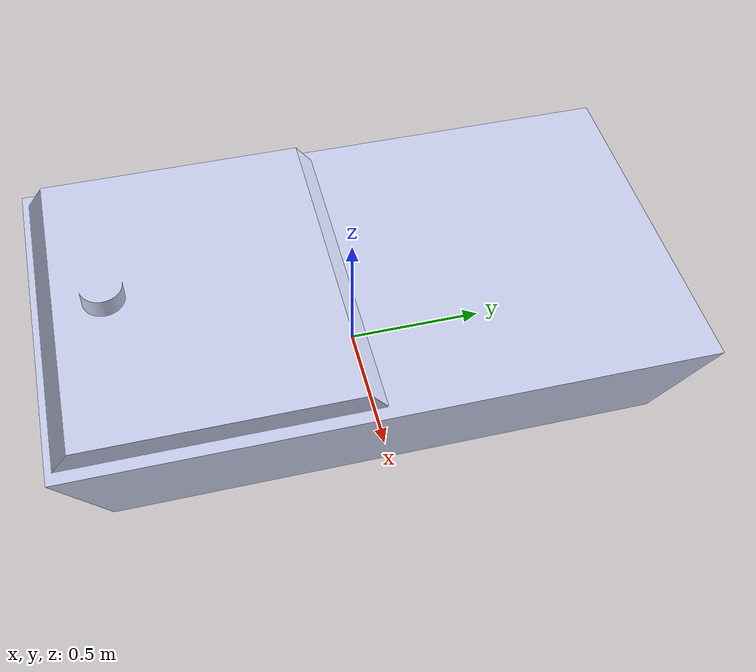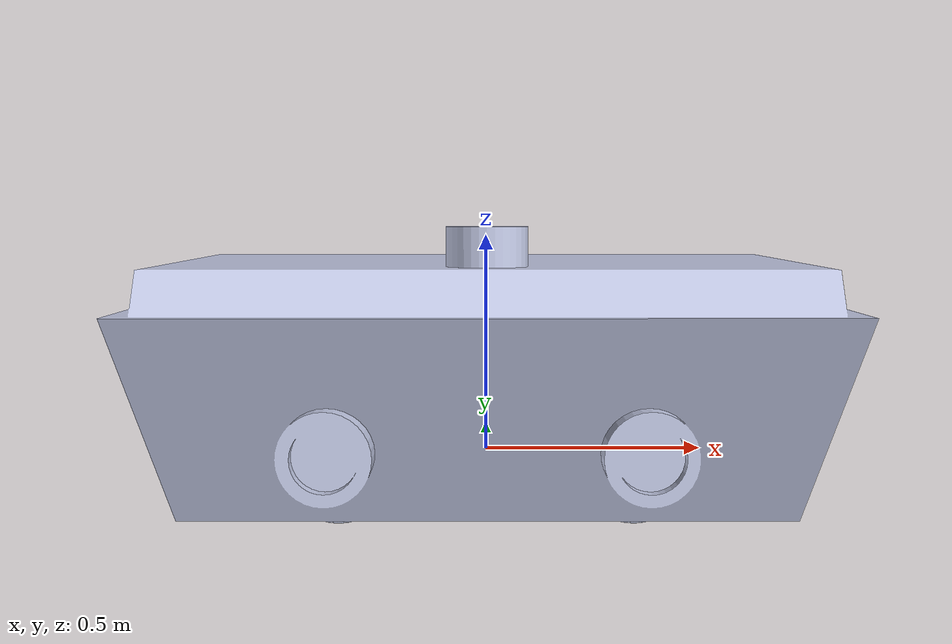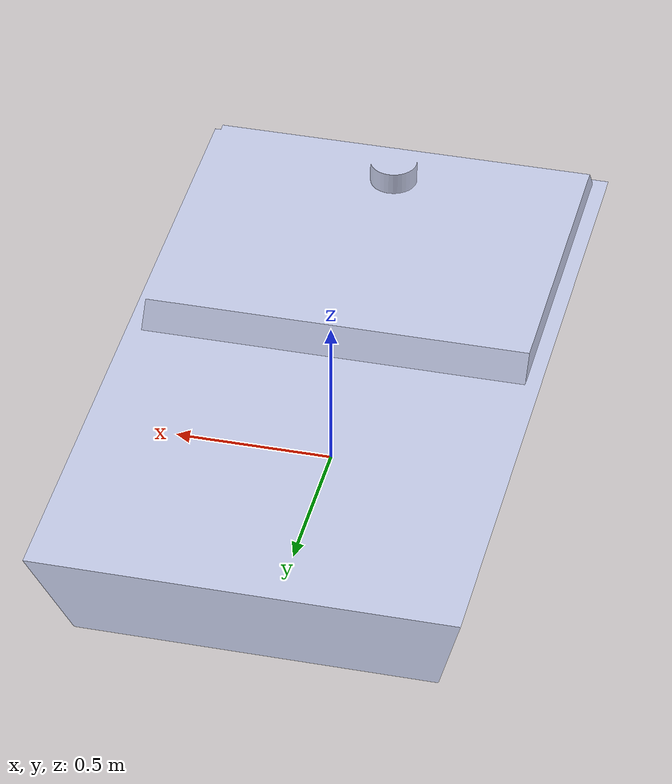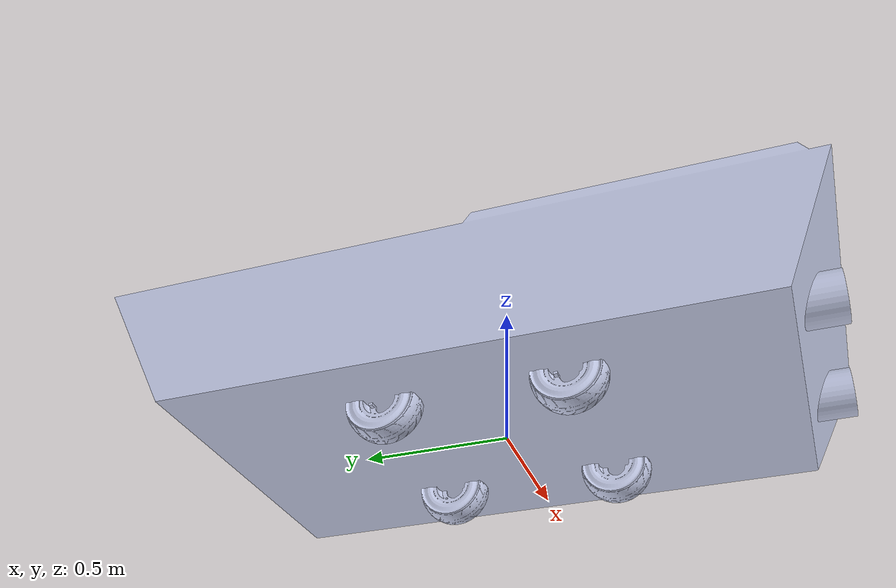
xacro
<?xml version="1.0"?>

<robot name="obito" xmlns:xacro="http://www.ros.org/wiki/xacro">
<xacro:include filename="$(find akatsuki_description)/urdf/bot.gazebo" />

<!--   base of the robot -->

  <link
    name="obito_base">
    <inertial>
      <origin
   xyz="0 0.0 0"
        rpy="0 0 3.142" />
      <mass
        value="28" />
         <inertia ixx="0.356" ixy="0" ixz="0" iyy="0.9443" iyz="0" izz="1.008"/>
    </inertial>
    <visual>
      <origin
        xyz="0 0 0"
        rpy="0 0 0" />
      <geometry>
        <mesh
          filename="package://akatsuki_description/meshes/stl/only_chassis.stl" />
      </geometry>
      <material
        name="">
        <color
          rgba="0.79216 0.81961 0.93333 1" />
      </material>
    </visual>
    <collision>
    <origin
        xyz="0 0.0 0"
        rpy="0 0 0" />
      <geometry>
     <mesh
          filename="package://akatsuki_description/meshes/stl/only_chassis.stl" />
      </geometry>
    </collision>
  </link>

 <link
    name="logo_link">
    <inertial>
      <origin
        xyz="0 0 0"
        rpy="0 0 0" />
      <mass
        value="0.001" />
          <inertia ixx="0" ixy="0" ixz="0" iyy="0.0" iyz="0" izz="0.00"/>
    </inertial>
    <visual>
      <origin
        xyz="0 0 0"
        rpy="0 0 0" />
      <geometry>
        <mesh
          filename="package://akatsuki_description/meshes/stl/logo.stl"/>
      </geometry>
      <material
        name="">
        <color
          rgba="0.79216 0.81961 0.93333 1" />
      </material>
    </visual>
  </link>
  <joint name="logo_joint" type="fixed">
    <origin
      xyz="0 0 0"
      rpy="0 0 0" />
    <parent
      link="obito_base" />
    <child
      link="logo_link" />
  </joint>

<!-- front wheel left -->

  <link
    name="front_wheel_left">
    <inertial>
      <origin
        xyz="0 0 0.12"
        rpy="0 0 0" />
      <mass
        value="0.7" />
          <inertia ixx="0.003" ixy="0" ixz="0" iyy="0.0030" iyz="0" izz="0.0035"/>
    </inertial>
    <visual>
      <origin
        xyz="0 0 0"
        rpy="0 0 0" />
      <geometry>
        <mesh
          filename="package://akatsuki_description/meshes/stl/wheel_left.stl" />
      </geometry>
      <material
        name="">
        <color
          rgba="0.79216 0.81961 0.93333 1" />
      </material>
    </visual>
    <collision>
      <origin
         xyz="0.05 0 0"
        rpy="0 1.5707 0" />
      <geometry>
          <cylinder length="0.1" radius="0.12"/>
      </geometry>
    </collision>
  </link>
  <joint
    name="front_wheel_left_joint"
    type="continuous">
    <origin
      xyz="0.27 -0.3 0"
      rpy="0 0 0" />
    <parent
      link="obito_base" />
    <child
      link="front_wheel_left" />
    <axis
      xyz="1 0 0" />
  </joint>

<!-- rear wheel left -->
  <link
    name="rear_wheel_left">
    <inertial>
      <origin
        xyz="0 0 0"
        rpy="0 0 0" />
      <mass
        value="0.7" />
           <inertia ixx="0.003" ixy="0" ixz="0" iyy="0.0030" iyz="0" izz="0.0035"/>
    </inertial>
    <visual>
      <origin
        xyz="0 0 0"
        rpy="0 0 0" />
      <geometry>
        <mesh
          filename="package://akatsuki_description/meshes/stl/wheel_left.stl" />
      </geometry>
      <material
        name="">
        <color
          rgba="0.79216 0.81961 0.93333 1" />
      </material>
    </visual>
    <collision>
      <origin
         xyz="0.05 0 0"
        rpy="0 1.5707 0" />
      <geometry>
         <cylinder length="0.1" radius="0.12"/>
      </geometry>
    </collision>
  </link>
  <joint
    name="rear_wheel_left_joint"
    type="continuous">
    <origin
      xyz="0.27 0.3 0"
      rpy="0 0 0" />
    <parent
      link="obito_base" />
    <child
      link="rear_wheel_left" />
    <axis
      xyz="1 0 0" />
  </joint>

<!--   front wheel right -->
  <link
    name="front_wheel_right">
    <inertial>
      <origin
        xyz="0 0 0"
        rpy="0 0 0" />
      <mass
        value="0.7" />
           <inertia ixx="0.003" ixy="0" ixz="0" iyy="0.0030" iyz="0" izz="0.0035"/>
    </inertial>
    <visual>
      <origin
        xyz="0 0 0"
        rpy="0 0 0" />
      <geometry>
        <mesh
          filename="package://akatsuki_description/meshes/stl/wheel_right.stl" />
      </geometry>
      <material
        name="">
        <color
          rgba="0.79216 0.81961 0.93333 1" />
      </material>
    </visual>
   <collision>
      <origin
         xyz="-0.05 0 0"
        rpy="0 1.5707 0" />
      <geometry>
          <cylinder length="0.1" radius="0.12"/>
      </geometry>
    </collision>
  </link>
  <joint
    name="front_wheel_right_joint"
    type="continuous">
    <origin
      xyz="-0.27 -0.3 0"
      rpy="0 0 0" />
    <parent
      link="obito_base" />
    <child
      link="front_wheel_right" />
    <axis
      xyz="1 0 0" />
  </joint>

<!--   rear wheel right -->
  <link
    name="rear_wheel_right">
    <inertial>
      <origin
        xyz="0 0 0"
        rpy="0 0 0" />
      <mass
        value="0.7" />
        <inertia ixx="0.003" ixy="0" ixz="0" iyy="0.0030" iyz="0" izz="0.0035"/>
    </inertial>
    <visual>
      <origin
        xyz="0 0 0"
        rpy="0 0 0" />
      <geometry>
        <mesh
          filename="package://akatsuki_description/meshes/stl/wheel_right.stl" />
      </geometry>
      <material
        name="">
        <color
          rgba="0.79216 0.81961 0.93333 1" />
      </material>
    </visual>
   <collision>
      <origin
         xyz="-0.05 0 0"
        rpy="0 1.5707 0" />
      <geometry>
          <cylinder length="0.1" radius="0.12"/>
      </geometry>
    </collision>
  </link>
  <joint
    name="rear_wheel_right_joint"
    type="continuous">
    <origin
      xyz="-0.27 0.3 0"
      rpy="0 0 0" />
    <parent
      link="obito_base" />
    <child
      link="rear_wheel_right" />
    <axis
      xyz="1 0 0" />
  </joint>

<link name="laser">
    <origin rpy="0 0 0" xyz="0 0 0"/>
    <inertial>
      <mass value="0.09"/>
      <inertia ixx="0" ixy="0" ixz="0" iyy="0" iyz="0" izz="0"/>
    </inertial>
    <collision>
      <origin rpy="0 0 0" xyz="0 0 0"/>
      <geometry>
        <cylinder length="0.040" radius="0.030"/>
      </geometry>
    </collision>
    <visual>
      <origin rpy="0 0 0" xyz="0 0 0"/>
      <geometry>
        <cylinder length="0.040" radius="0.030"/>
      </geometry>
    </visual>
  </link>

  <joint name="lidar_joint" type="fixed">
    <axis xyz="0 1 0"/>
    <origin xyz="0 -0.36 0.23"
      rpy="0 0 -1.571" />

    <parent link="obito_base"/>
    <child link="laser"/>
    <axis rpy="0 0 0" xyz="0. 0 0.178"/>
  </joint>

</robot>
